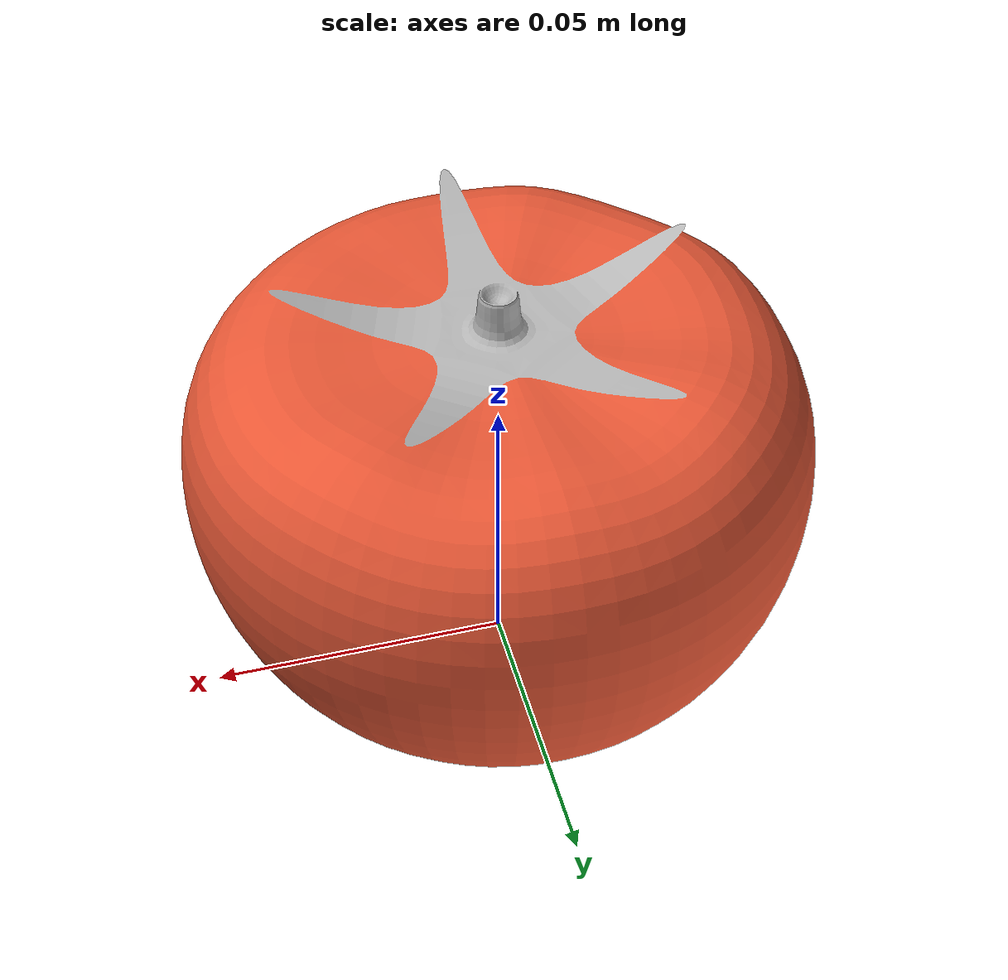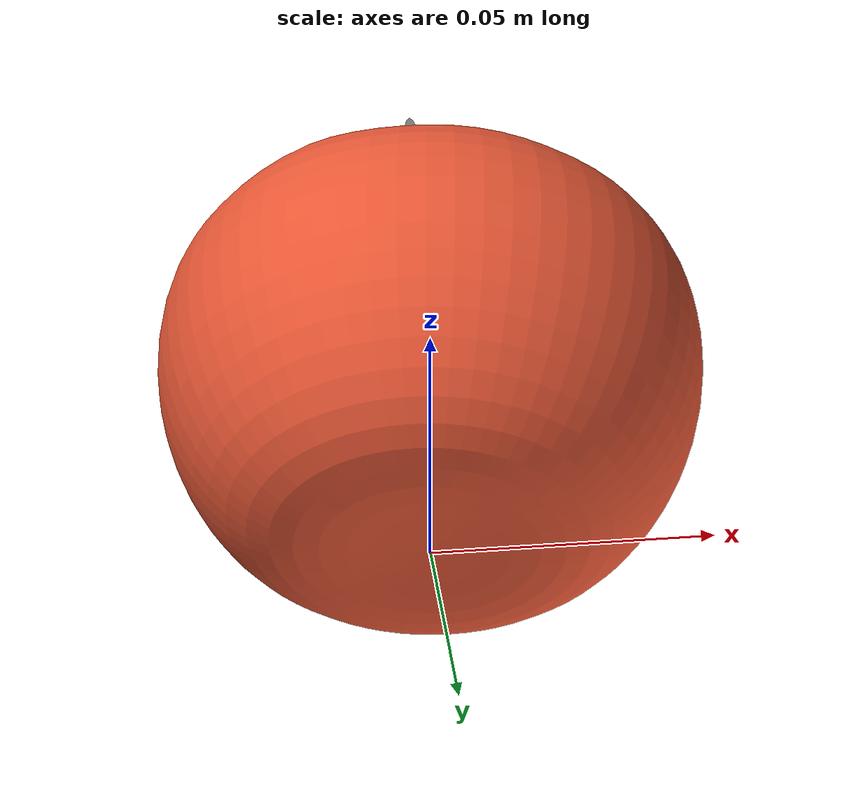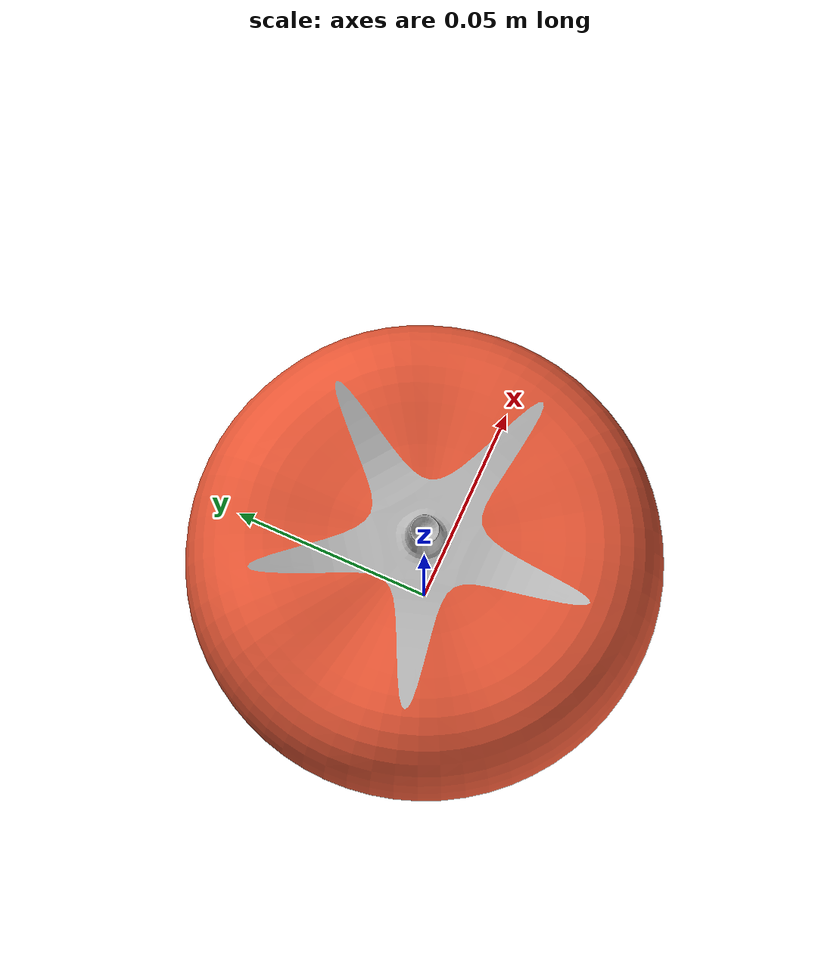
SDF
<?xml version="1.0" ?>
<sdf version="1.5">
  <model name="tomato">
    <static>true</static>
    <link name="chair_link">
        <collision name="chair_collision">
         <geometry>
            <box>
                <size>0.01 0.01 0.01</size>
            </box>
        </geometry>
      </collision>

      <visual name="chair_mesh">
        <cast_shadows>true</cast_shadows>
        <geometry>
            <mesh>
                <uri>model://tomato/meshes/model.dae</uri>
            </mesh>
        </geometry>
      </visual>
    </link>
  </model>
</sdf>
